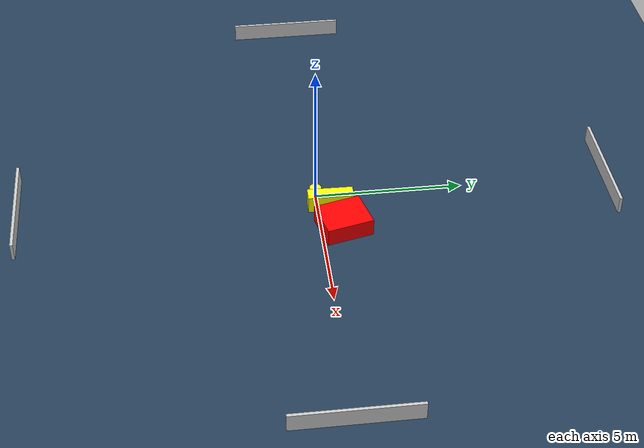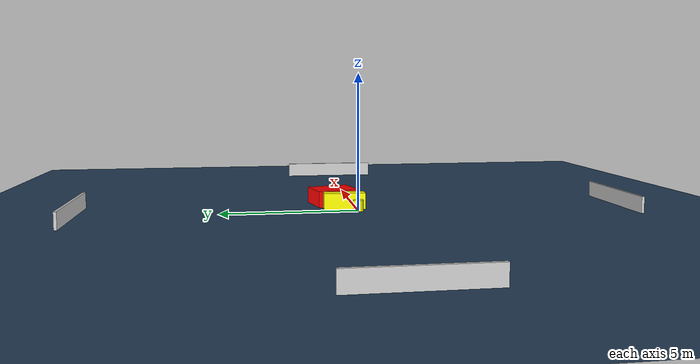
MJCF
<?xml version="1.0" ?>
<mujoco model="generated_environment">
  <option timestep="0.01" integrator="RK4" cone="elliptic"/>
  <default>
    <geom density="1"/>
  </default>
  <asset>
    <texture builtin="gradient" height="3072" name="skybox" rgb1="0.3 0.5 0.7" rgb2="0 0 0" type="skybox" width="512"/>
    <texture builtin="checker" height="300" name="groundplane" rgb1="0.2 0.3 0.4" rgb2="0.1 0.2 0.3" type="2d" width="300"/>
    <material name="groundplane" reflectance="0.2" texrepeat="5 5" texture="groundplane"/>
  </asset>
  <worldbody>
    <light dir="0 0 -1" directional="true" pos="0 0 1.5"/>
    <geom condim="3" friction="0.5 0.005 0.001" material="groundplane" name="floor" pos="0 0 0" size="0 0 0.05" type="plane"/>
    <body name="walls">
      <geom name="wall_1" condim="4" pos="-10.0 0.0 0.3" rgba="0.800000011920929 0.800000011920929 0.800000011920929 1.0" size="0.05 2.0 0.3" type="box"/>
      <geom name="wall_2" condim="4" pos="10.0 0.0 0.3" rgba="0.800000011920929 0.800000011920929 0.800000011920929 1.0" size="0.05 2.0 0.3" type="box"/>
      <geom name="wall_3" condim="4" pos="0.0 -10.0 0.3" rgba="0.800000011920929 0.800000011920929 0.800000011920929 1.0" size="2.0 0.05 0.3" type="box"/>
      <geom name="wall_4" condim="4" pos="0.0 10.0 0.3" rgba="0.800000011920929 0.800000011920929 0.800000011920929 1.0" size="2.0 0.05 0.3" type="box"/>
    </body>
    <body name="robot">
      <joint name="joint_x" type="slide" pos="0 0 0" axis="1 0 0"/>
      <joint name="joint_y" type="slide" pos="0 0 0" axis="0 1 0"/>
      <geom name="robot" type="cylinder" pos="0.0 0.0 0.2" size="0.2 0.2 0.0" mass="5.0" friction="1.0 0.005 0.0001" condim="4" rgba="1.0 1.0 0.0 1.0"/>
    </body>
    <body name="obstacle_1_movable">
      <geom name="obstacle_1_movable" condim="4" pos="0.5647937256541761 0.443377884475166 0.3" euler="0 0 269.05314786863227" friction="0.0 0.005 0.001" rgba="1.0 1.0 0.0 1.0" size="0.7656239659251085 0.24054878862806817 0.3" type="box" mass="0.1"/>
      <joint type="free"/>
    </body>
    <body name="obstacle_2_static">
      <geom name="obstacle_2_static" condim="4" pos="1.670491334219874 0.7422687065559053 0.3" euler="0 0 193.8906701878945" friction="0.0 0.005 0.001" rgba="1.0 0.0 0.0 1.0" size="0.6702801187033911 0.7933672831142566 0.3" type="box"/>
    </body>
  </worldbody>
  <actuator>
    <motor name="actuator_x" joint="joint_x" gear="1" ctrlrange="-1 1"/>
    <motor name="actuator_y" joint="joint_y" gear="1" ctrlrange="-1 1"/>
  </actuator>
</mujoco>
